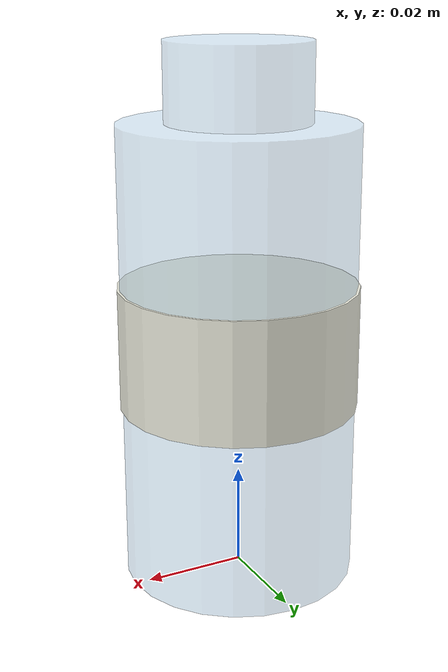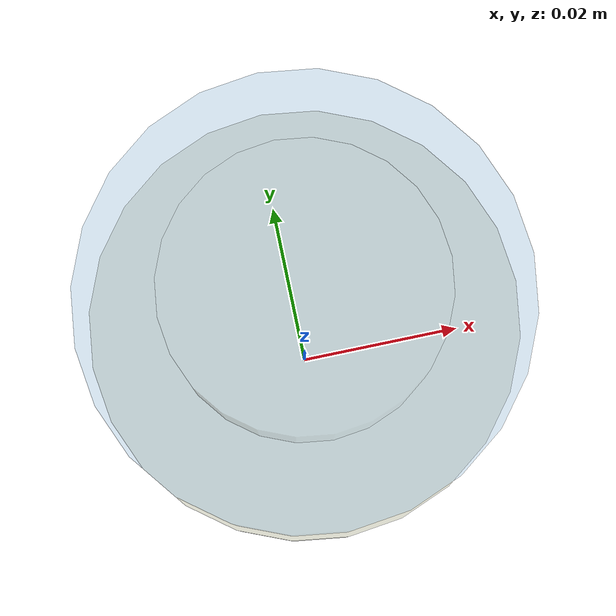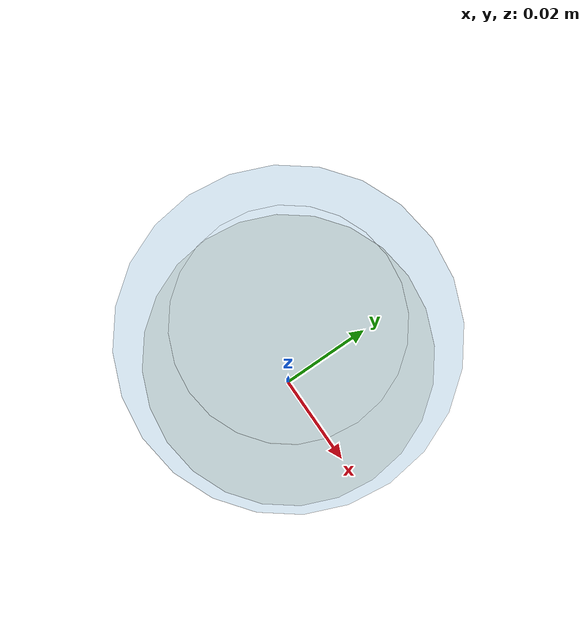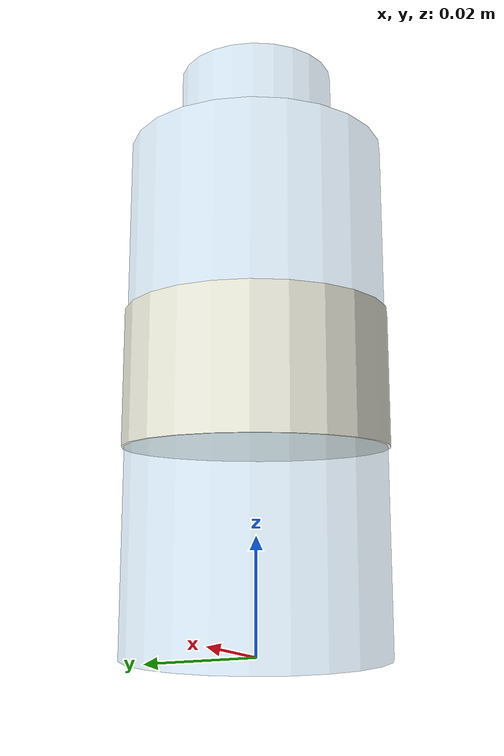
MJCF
<mujoco model="liquid_bottle">
  <asset>
    <material name="bottle_glass" rgba="0.72 0.88 1.00 0.42" specular="0.35" shininess="0.35" />
    <material name="bottle_liquid" rgba="0.18 0.55 0.95 0.78" specular="0.10" shininess="0.08" />
    <material name="bottle_label" rgba="0.96 0.96 0.90 1" specular="0.05" shininess="0.05" />
    <material name="collision_invisible" rgba="0.8 0.8 0.8 0" />
  </asset>
  <worldbody>
    <body>
      <body name="object">
        <geom name="bottle_collision" type="cylinder" pos="0 0 0.045" size="0.022 0.045"
              material="collision_invisible" group="0"
              density="650" friction="1.15 0.45 0.10"
              solimp="0.998 0.998 0.001" solref="0.004 1" />
        <geom name="bottle_body_visual" type="cylinder" pos="0 0 0.045" size="0.023 0.045"
              material="bottle_glass" group="1" contype="0" conaffinity="0" />
        <geom name="liquid_visual" type="cylinder" pos="0 0 0.032" size="0.020 0.026"
              material="bottle_liquid" group="1" contype="0" conaffinity="0" />
        <geom name="label_visual" type="cylinder" pos="0 0 0.047" size="0.0235 0.012"
              material="bottle_label" group="1" contype="0" conaffinity="0" />
        <geom name="neck_collision" type="cylinder" pos="0 0 0.095" size="0.0115 0.009"
              material="collision_invisible" group="0"
              density="650" friction="1.15 0.45 0.10"
              solimp="0.998 0.998 0.001" solref="0.004 1" />
        <geom name="neck_visual" type="cylinder" pos="0 0 0.095" size="0.014 0.010"
              material="bottle_glass" group="1" contype="0" conaffinity="0" />
        <site name="cap_region" type="cylinder" pos="0 0 0.090" quat="1 0 0 0" size="0.025 0.034"
              rgba="0 0 0 0" group="0" />
      </body>
      <site name="bottom_site" pos="0 0 0.000" quat="1 0 0 0" size="0.004" rgba="0 0 0 0"/>
      <site name="top_site" pos="0 0 0.112" quat="1 0 0 0" size="0.004" rgba="0 0 0 0"/>
      <site name="horizontal_radius_site" pos="0.024 0.024 0.052" quat="1 0 0 0" size="0.004" rgba="0 0 0 0"/>
    </body>
  </worldbody>
</mujoco>
